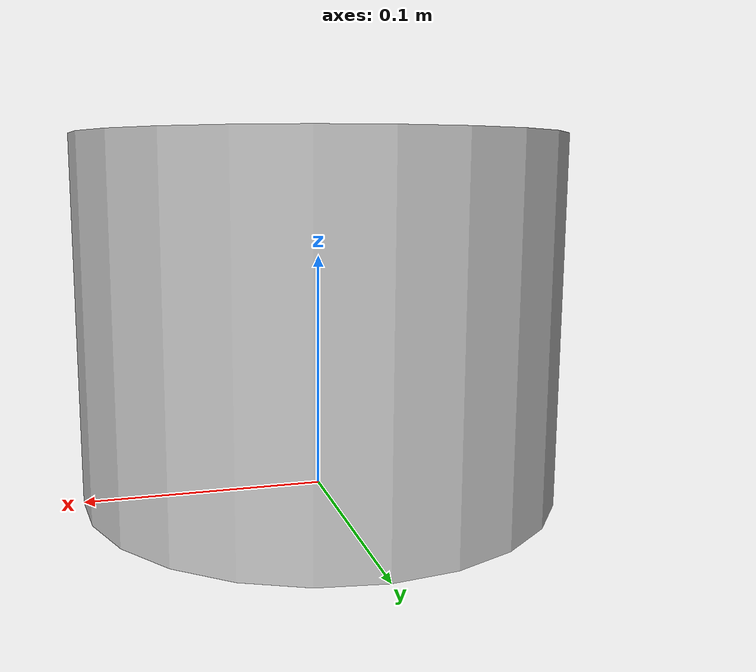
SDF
<?xml version="1.0" ?>

<sdf version="1.5">
  <model name="cylinder_base">
    <link name="left_wheel">
        <pose>0.0 0.0 0.075 0 0 0</pose>
        <collision name="collision">
          <geometry>
            <cylinder>
              <radius>.1</radius>
              <length>0.15</length>
            </cylinder>
          </geometry>
        </collision>
        <visual name="visual">
          <geometry>
            <cylinder>
              <radius>.10</radius>
              <length>0.15</length>
            </cylinder>
          </geometry>
        </visual>
      </link>
  </model>
</sdf>
